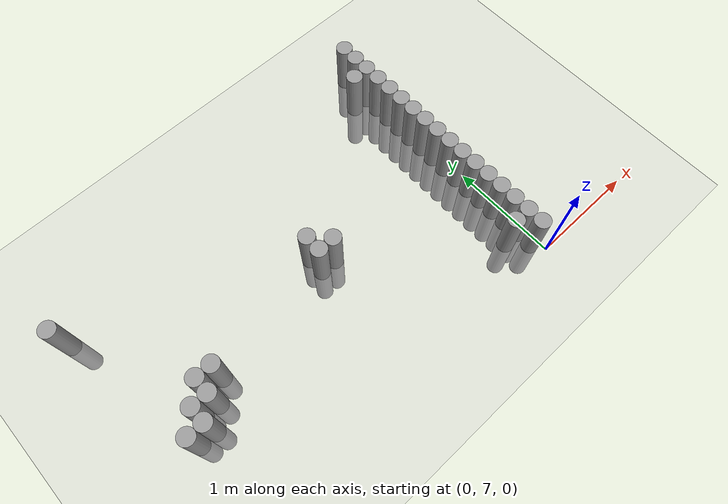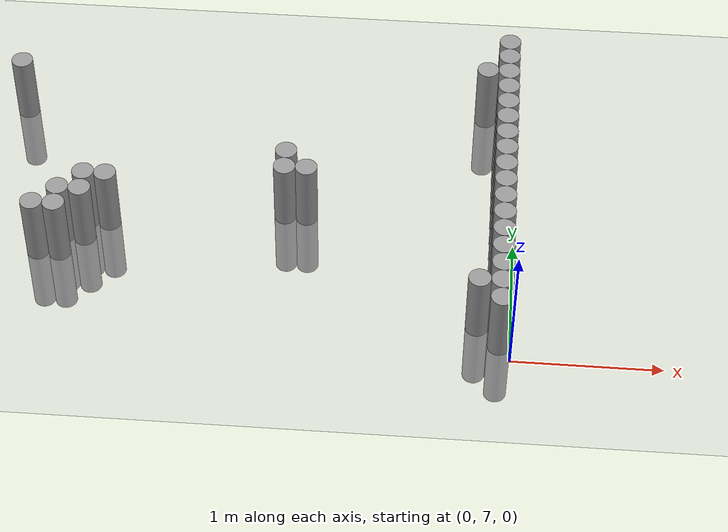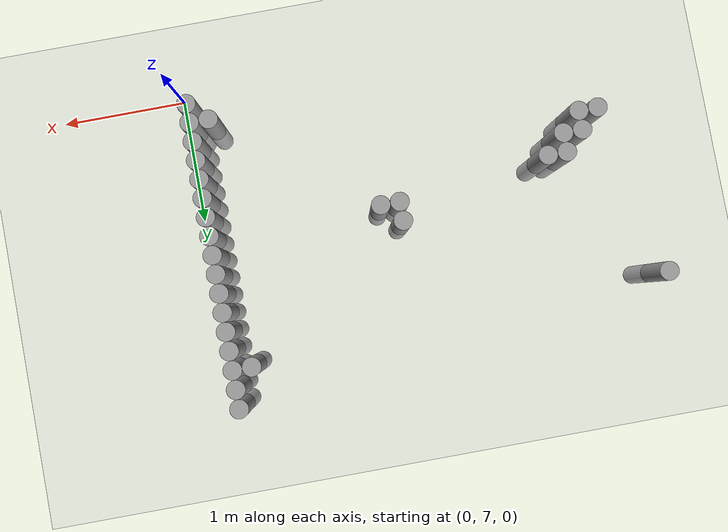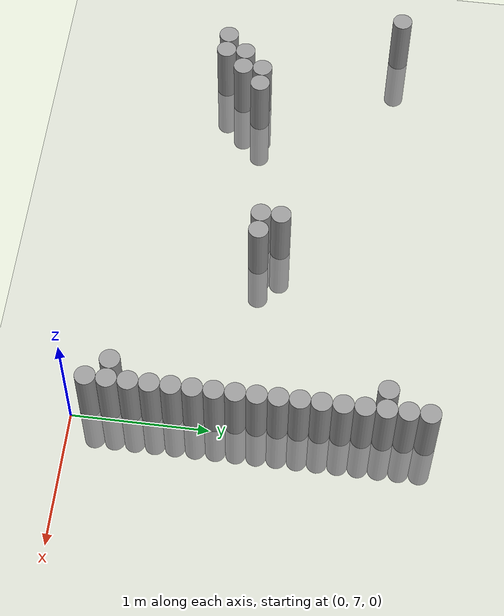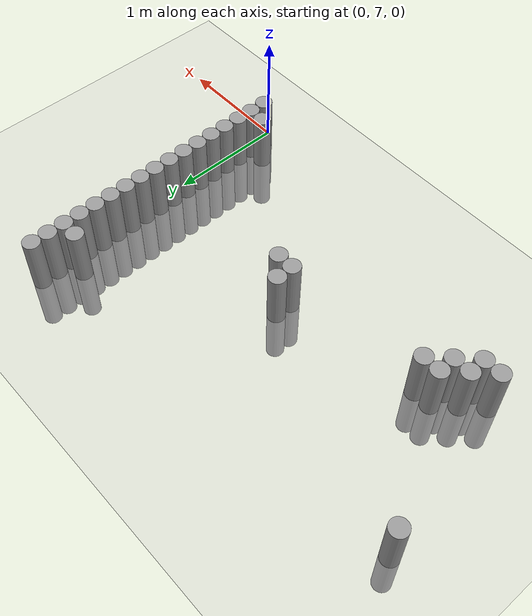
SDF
<sdf version="1.6">
 <world name="default">
  <model name="ground_plane">
   <static>1</static>
   <static>1</static>
   <link name="link">
    <collision name="collision">
     <geometry><plane><normal>0 0 1</normal><size>100 100</size></plane></geometry>
     <surface><friction><ode><mu>100</mu><mu2>50</mu2></ode></friction></surface>
    </collision>
    <visual name="visual">
     <cast_shadows>0</cast_shadows>
     <geometry><plane><normal>0 0 1</normal><size>100 100</size></plane></geometry>
     <material>
      <script><uri>file://media/materials/scripts/gazebo.material</uri><name>Gazebo/Grey</name></script>
     </material>
    </visual>
   </link>
  </model>
  <model name="unit_cylinder_156">
   <static>1</static>
   <pose>-3.525000 9.075000 0.000000 0.000000 0.000000 0.000000</pose>
   <link name="link">
    <inertial>
     <mass>1</mass>
     <inertia><ixx>0.145833</ixx><ixy>0</ixy><ixz>0</ixz><iyy>0.145833</iyy><iyz>0</iyz><izz>0.125</izz></inertia>
    </inertial>
    <collision name="collision">
     <geometry><cylinder><radius>0.075000</radius><length>1</length></cylinder></geometry>
    </collision>
    <visual name="visual">
     <geometry><cylinder><radius>0.075000</radius><length>1</length></cylinder></geometry>
     <material>
      <script><name>Gazebo/Grey</name><uri>file://media/materials/scripts/gazebo.material</uri></script>
     </material>
    </visual>
   </link>
  </model>
  <model name="unit_cylinder_157">
   <static>1</static>
   <pose>-3.225000 7.725000 0.000000 0.000000 0.000000 0.000000</pose>
   <link name="link">
    <inertial>
     <mass>1</mass>
     <inertia><ixx>0.145833</ixx><ixy>0</ixy><ixz>0</ixz><iyy>0.145833</iyy><iyz>0</iyz><izz>0.125</izz></inertia>
    </inertial>
    <collision name="collision">
     <geometry><cylinder><radius>0.075000</radius><length>1</length></cylinder></geometry>
    </collision>
    <visual name="visual">
     <geometry><cylinder><radius>0.075000</radius><length>1</length></cylinder></geometry>
     <material>
      <script><name>Gazebo/Grey</name><uri>file://media/materials/scripts/gazebo.material</uri></script>
     </material>
    </visual>
   </link>
  </model>
  <model name="unit_cylinder_160">
   <static>1</static>
   <pose>-3.075000 7.725000 0.000000 0.000000 0.000000 0.000000</pose>
   <link name="link">
    <inertial>
     <mass>1</mass>
     <inertia><ixx>0.145833</ixx><ixy>0</ixy><ixz>0</ixz><iyy>0.145833</iyy><iyz>0</iyz><izz>0.125</izz></inertia>
    </inertial>
    <collision name="collision">
     <geometry><cylinder><radius>0.075000</radius><length>1</length></cylinder></geometry>
    </collision>
    <visual name="visual">
     <geometry><cylinder><radius>0.075000</radius><length>1</length></cylinder></geometry>
     <material>
      <script><name>Gazebo/Grey</name><uri>file://media/materials/scripts/gazebo.material</uri></script>
     </material>
    </visual>
   </link>
  </model>
  <model name="unit_cylinder_161">
   <static>1</static>
   <pose>-3.075000 7.875000 0.000000 0.000000 0.000000 0.000000</pose>
   <link name="link">
    <inertial>
     <mass>1</mass>
     <inertia><ixx>0.145833</ixx><ixy>0</ixy><ixz>0</ixz><iyy>0.145833</iyy><iyz>0</iyz><izz>0.125</izz></inertia>
    </inertial>
    <collision name="collision">
     <geometry><cylinder><radius>0.075000</radius><length>1</length></cylinder></geometry>
    </collision>
    <visual name="visual">
     <geometry><cylinder><radius>0.075000</radius><length>1</length></cylinder></geometry>
     <material>
      <script><name>Gazebo/Grey</name><uri>file://media/materials/scripts/gazebo.material</uri></script>
     </material>
    </visual>
   </link>
  </model>
  <model name="unit_cylinder_163">
   <static>1</static>
   <pose>-2.925000 7.875000 0.000000 0.000000 0.000000 0.000000</pose>
   <link name="link">
    <inertial>
     <mass>1</mass>
     <inertia><ixx>0.145833</ixx><ixy>0</ixy><ixz>0</ixz><iyy>0.145833</iyy><iyz>0</iyz><izz>0.125</izz></inertia>
    </inertial>
    <collision name="collision">
     <geometry><cylinder><radius>0.075000</radius><length>1</length></cylinder></geometry>
    </collision>
    <visual name="visual">
     <geometry><cylinder><radius>0.075000</radius><length>1</length></cylinder></geometry>
     <material>
      <script><name>Gazebo/Grey</name><uri>file://media/materials/scripts/gazebo.material</uri></script>
     </material>
    </visual>
   </link>
  </model>
  <model name="unit_cylinder_164">
   <static>1</static>
   <pose>-2.925000 8.025000 0.000000 0.000000 0.000000 0.000000</pose>
   <link name="link">
    <inertial>
     <mass>1</mass>
     <inertia><ixx>0.145833</ixx><ixy>0</ixy><ixz>0</ixz><iyy>0.145833</iyy><iyz>0</iyz><izz>0.125</izz></inertia>
    </inertial>
    <collision name="collision">
     <geometry><cylinder><radius>0.075000</radius><length>1</length></cylinder></geometry>
    </collision>
    <visual name="visual">
     <geometry><cylinder><radius>0.075000</radius><length>1</length></cylinder></geometry>
     <material>
      <script><name>Gazebo/Grey</name><uri>file://media/materials/scripts/gazebo.material</uri></script>
     </material>
    </visual>
   </link>
  </model>
  <model name="unit_cylinder_165">
   <static>1</static>
   <pose>-2.775000 8.025000 0.000000 0.000000 0.000000 0.000000</pose>
   <link name="link">
    <inertial>
     <mass>1</mass>
     <inertia><ixx>0.145833</ixx><ixy>0</ixy><ixz>0</ixz><iyy>0.145833</iyy><iyz>0</iyz><izz>0.125</izz></inertia>
    </inertial>
    <collision name="collision">
     <geometry><cylinder><radius>0.075000</radius><length>1</length></cylinder></geometry>
    </collision>
    <visual name="visual">
     <geometry><cylinder><radius>0.075000</radius><length>1</length></cylinder></geometry>
     <material>
      <script><name>Gazebo/Grey</name><uri>file://media/materials/scripts/gazebo.material</uri></script>
     </material>
    </visual>
   </link>
  </model>
  <model name="unit_cylinder_177">
   <static>1</static>
   <pose>-1.575000 8.175000 0.000000 0.000000 0.000000 0.000000</pose>
   <link name="link">
    <inertial>
     <mass>1</mass>
     <inertia><ixx>0.145833</ixx><ixy>0</ixy><ixz>0</ixz><iyy>0.145833</iyy><iyz>0</iyz><izz>0.125</izz></inertia>
    </inertial>
    <collision name="collision">
     <geometry><cylinder><radius>0.075000</radius><length>1</length></cylinder></geometry>
    </collision>
    <visual name="visual">
     <geometry><cylinder><radius>0.075000</radius><length>1</length></cylinder></geometry>
     <material>
      <script><name>Gazebo/Grey</name><uri>file://media/materials/scripts/gazebo.material</uri></script>
     </material>
    </visual>
   </link>
  </model>
  <model name="unit_cylinder_178">
   <static>1</static>
   <pose>-1.575000 8.325000 0.000000 0.000000 0.000000 0.000000</pose>
   <link name="link">
    <inertial>
     <mass>1</mass>
     <inertia><ixx>0.145833</ixx><ixy>0</ixy><ixz>0</ixz><iyy>0.145833</iyy><iyz>0</iyz><izz>0.125</izz></inertia>
    </inertial>
    <collision name="collision">
     <geometry><cylinder><radius>0.075000</radius><length>1</length></cylinder></geometry>
    </collision>
    <visual name="visual">
     <geometry><cylinder><radius>0.075000</radius><length>1</length></cylinder></geometry>
     <material>
      <script><name>Gazebo/Grey</name><uri>file://media/materials/scripts/gazebo.material</uri></script>
     </material>
    </visual>
   </link>
  </model>
  <model name="unit_cylinder_180">
   <static>1</static>
   <pose>-1.425000 8.175000 0.000000 0.000000 0.000000 0.000000</pose>
   <link name="link">
    <inertial>
     <mass>1</mass>
     <inertia><ixx>0.145833</ixx><ixy>0</ixy><ixz>0</ixz><iyy>0.145833</iyy><iyz>0</iyz><izz>0.125</izz></inertia>
    </inertial>
    <collision name="collision">
     <geometry><cylinder><radius>0.075000</radius><length>1</length></cylinder></geometry>
    </collision>
    <visual name="visual">
     <geometry><cylinder><radius>0.075000</radius><length>1</length></cylinder></geometry>
     <material>
      <script><name>Gazebo/Grey</name><uri>file://media/materials/scripts/gazebo.material</uri></script>
     </material>
    </visual>
   </link>
  </model>
  <model name="unit_cylinder_194">
   <static>1</static>
   <pose>-0.225000 7.275000 0.000000 0.000000 0.000000 0.000000</pose>
   <link name="link">
    <inertial>
     <mass>1</mass>
     <inertia><ixx>0.145833</ixx><ixy>0</ixy><ixz>0</ixz><iyy>0.145833</iyy><iyz>0</iyz><izz>0.125</izz></inertia>
    </inertial>
    <collision name="collision">
     <geometry><cylinder><radius>0.075000</radius><length>1</length></cylinder></geometry>
    </collision>
    <visual name="visual">
     <geometry><cylinder><radius>0.075000</radius><length>1</length></cylinder></geometry>
     <material>
      <script><name>Gazebo/Grey</name><uri>file://media/materials/scripts/gazebo.material</uri></script>
     </material>
    </visual>
   </link>
  </model>
  <model name="unit_cylinder_195">
   <static>1</static>
   <pose>-0.225000 9.225000 0.000000 0.000000 0.000000 0.000000</pose>
   <link name="link">
    <inertial>
     <mass>1</mass>
     <inertia><ixx>0.145833</ixx><ixy>0</ixy><ixz>0</ixz><iyy>0.145833</iyy><iyz>0</iyz><izz>0.125</izz></inertia>
    </inertial>
    <collision name="collision">
     <geometry><cylinder><radius>0.075000</radius><length>1</length></cylinder></geometry>
    </collision>
    <visual name="visual">
     <geometry><cylinder><radius>0.075000</radius><length>1</length></cylinder></geometry>
     <material>
      <script><name>Gazebo/Grey</name><uri>file://media/materials/scripts/gazebo.material</uri></script>
     </material>
    </visual>
   </link>
  </model>
  <model name="unit_cylinder_209">
   <static>1</static>
   <pose>-0.075000 7.125000 0.000000 0.000000 0.000000 0.000000</pose>
   <link name="link">
    <inertial>
     <mass>1</mass>
     <inertia><ixx>0.145833</ixx><ixy>0</ixy><ixz>0</ixz><iyy>0.145833</iyy><iyz>0</iyz><izz>0.125</izz></inertia>
    </inertial>
    <collision name="collision">
     <geometry><cylinder><radius>0.075000</radius><length>1</length></cylinder></geometry>
    </collision>
    <visual name="visual">
     <geometry><cylinder><radius>0.075000</radius><length>1</length></cylinder></geometry>
     <material>
      <script><name>Gazebo/Grey</name><uri>file://media/materials/scripts/gazebo.material</uri></script>
     </material>
    </visual>
   </link>
  </model>
  <model name="unit_cylinder_210">
   <static>1</static>
   <pose>-0.075000 7.275000 0.000000 0.000000 0.000000 0.000000</pose>
   <link name="link">
    <inertial>
     <mass>1</mass>
     <inertia><ixx>0.145833</ixx><ixy>0</ixy><ixz>0</ixz><iyy>0.145833</iyy><iyz>0</iyz><izz>0.125</izz></inertia>
    </inertial>
    <collision name="collision">
     <geometry><cylinder><radius>0.075000</radius><length>1</length></cylinder></geometry>
    </collision>
    <visual name="visual">
     <geometry><cylinder><radius>0.075000</radius><length>1</length></cylinder></geometry>
     <material>
      <script><name>Gazebo/Grey</name><uri>file://media/materials/scripts/gazebo.material</uri></script>
     </material>
    </visual>
   </link>
  </model>
  <model name="unit_cylinder_211">
   <static>1</static>
   <pose>-0.075000 7.425000 0.000000 0.000000 0.000000 0.000000</pose>
   <link name="link">
    <inertial>
     <mass>1</mass>
     <inertia><ixx>0.145833</ixx><ixy>0</ixy><ixz>0</ixz><iyy>0.145833</iyy><iyz>0</iyz><izz>0.125</izz></inertia>
    </inertial>
    <collision name="collision">
     <geometry><cylinder><radius>0.075000</radius><length>1</length></cylinder></geometry>
    </collision>
    <visual name="visual">
     <geometry><cylinder><radius>0.075000</radius><length>1</length></cylinder></geometry>
     <material>
      <script><name>Gazebo/Grey</name><uri>file://media/materials/scripts/gazebo.material</uri></script>
     </material>
    </visual>
   </link>
  </model>
  <model name="unit_cylinder_212">
   <static>1</static>
   <pose>-0.075000 7.575000 0.000000 0.000000 0.000000 0.000000</pose>
   <link name="link">
    <inertial>
     <mass>1</mass>
     <inertia><ixx>0.145833</ixx><ixy>0</ixy><ixz>0</ixz><iyy>0.145833</iyy><iyz>0</iyz><izz>0.125</izz></inertia>
    </inertial>
    <collision name="collision">
     <geometry><cylinder><radius>0.075000</radius><length>1</length></cylinder></geometry>
    </collision>
    <visual name="visual">
     <geometry><cylinder><radius>0.075000</radius><length>1</length></cylinder></geometry>
     <material>
      <script><name>Gazebo/Grey</name><uri>file://media/materials/scripts/gazebo.material</uri></script>
     </material>
    </visual>
   </link>
  </model>
  <model name="unit_cylinder_213">
   <static>1</static>
   <pose>-0.075000 7.725000 0.000000 0.000000 0.000000 0.000000</pose>
   <link name="link">
    <inertial>
     <mass>1</mass>
     <inertia><ixx>0.145833</ixx><ixy>0</ixy><ixz>0</ixz><iyy>0.145833</iyy><iyz>0</iyz><izz>0.125</izz></inertia>
    </inertial>
    <collision name="collision">
     <geometry><cylinder><radius>0.075000</radius><length>1</length></cylinder></geometry>
    </collision>
    <visual name="visual">
     <geometry><cylinder><radius>0.075000</radius><length>1</length></cylinder></geometry>
     <material>
      <script><name>Gazebo/Grey</name><uri>file://media/materials/scripts/gazebo.material</uri></script>
     </material>
    </visual>
   </link>
  </model>
  <model name="unit_cylinder_214">
   <static>1</static>
   <pose>-0.075000 7.875000 0.000000 0.000000 0.000000 0.000000</pose>
   <link name="link">
    <inertial>
     <mass>1</mass>
     <inertia><ixx>0.145833</ixx><ixy>0</ixy><ixz>0</ixz><iyy>0.145833</iyy><iyz>0</iyz><izz>0.125</izz></inertia>
    </inertial>
    <collision name="collision">
     <geometry><cylinder><radius>0.075000</radius><length>1</length></cylinder></geometry>
    </collision>
    <visual name="visual">
     <geometry><cylinder><radius>0.075000</radius><length>1</length></cylinder></geometry>
     <material>
      <script><name>Gazebo/Grey</name><uri>file://media/materials/scripts/gazebo.material</uri></script>
     </material>
    </visual>
   </link>
  </model>
  <model name="unit_cylinder_215">
   <static>1</static>
   <pose>-0.075000 8.025000 0.000000 0.000000 0.000000 0.000000</pose>
   <link name="link">
    <inertial>
     <mass>1</mass>
     <inertia><ixx>0.145833</ixx><ixy>0</ixy><ixz>0</ixz><iyy>0.145833</iyy><iyz>0</iyz><izz>0.125</izz></inertia>
    </inertial>
    <collision name="collision">
     <geometry><cylinder><radius>0.075000</radius><length>1</length></cylinder></geometry>
    </collision>
    <visual name="visual">
     <geometry><cylinder><radius>0.075000</radius><length>1</length></cylinder></geometry>
     <material>
      <script><name>Gazebo/Grey</name><uri>file://media/materials/scripts/gazebo.material</uri></script>
     </material>
    </visual>
   </link>
  </model>
  <model name="unit_cylinder_216">
   <static>1</static>
   <pose>-0.075000 8.175000 0.000000 0.000000 0.000000 0.000000</pose>
   <link name="link">
    <inertial>
     <mass>1</mass>
     <inertia><ixx>0.145833</ixx><ixy>0</ixy><ixz>0</ixz><iyy>0.145833</iyy><iyz>0</iyz><izz>0.125</izz></inertia>
    </inertial>
    <collision name="collision">
     <geometry><cylinder><radius>0.075000</radius><length>1</length></cylinder></geometry>
    </collision>
    <visual name="visual">
     <geometry><cylinder><radius>0.075000</radius><length>1</length></cylinder></geometry>
     <material>
      <script><name>Gazebo/Grey</name><uri>file://media/materials/scripts/gazebo.material</uri></script>
     </material>
    </visual>
   </link>
  </model>
  <model name="unit_cylinder_217">
   <static>1</static>
   <pose>-0.075000 8.325000 0.000000 0.000000 0.000000 0.000000</pose>
   <link name="link">
    <inertial>
     <mass>1</mass>
     <inertia><ixx>0.145833</ixx><ixy>0</ixy><ixz>0</ixz><iyy>0.145833</iyy><iyz>0</iyz><izz>0.125</izz></inertia>
    </inertial>
    <collision name="collision">
     <geometry><cylinder><radius>0.075000</radius><length>1</length></cylinder></geometry>
    </collision>
    <visual name="visual">
     <geometry><cylinder><radius>0.075000</radius><length>1</length></cylinder></geometry>
     <material>
      <script><name>Gazebo/Grey</name><uri>file://media/materials/scripts/gazebo.material</uri></script>
     </material>
    </visual>
   </link>
  </model>
  <model name="unit_cylinder_218">
   <static>1</static>
   <pose>-0.075000 8.475000 0.000000 0.000000 0.000000 0.000000</pose>
   <link name="link">
    <inertial>
     <mass>1</mass>
     <inertia><ixx>0.145833</ixx><ixy>0</ixy><ixz>0</ixz><iyy>0.145833</iyy><iyz>0</iyz><izz>0.125</izz></inertia>
    </inertial>
    <collision name="collision">
     <geometry><cylinder><radius>0.075000</radius><length>1</length></cylinder></geometry>
    </collision>
    <visual name="visual">
     <geometry><cylinder><radius>0.075000</radius><length>1</length></cylinder></geometry>
     <material>
      <script><name>Gazebo/Grey</name><uri>file://media/materials/scripts/gazebo.material</uri></script>
     </material>
    </visual>
   </link>
  </model>
  <model name="unit_cylinder_219">
   <static>1</static>
   <pose>-0.075000 8.625000 0.000000 0.000000 0.000000 0.000000</pose>
   <link name="link">
    <inertial>
     <mass>1</mass>
     <inertia><ixx>0.145833</ixx><ixy>0</ixy><ixz>0</ixz><iyy>0.145833</iyy><iyz>0</iyz><izz>0.125</izz></inertia>
    </inertial>
    <collision name="collision">
     <geometry><cylinder><radius>0.075000</radius><length>1</length></cylinder></geometry>
    </collision>
    <visual name="visual">
     <geometry><cylinder><radius>0.075000</radius><length>1</length></cylinder></geometry>
     <material>
      <script><name>Gazebo/Grey</name><uri>file://media/materials/scripts/gazebo.material</uri></script>
     </material>
    </visual>
   </link>
  </model>
  <model name="unit_cylinder_220">
   <static>1</static>
   <pose>-0.075000 8.775000 0.000000 0.000000 0.000000 0.000000</pose>
   <link name="link">
    <inertial>
     <mass>1</mass>
     <inertia><ixx>0.145833</ixx><ixy>0</ixy><ixz>0</ixz><iyy>0.145833</iyy><iyz>0</iyz><izz>0.125</izz></inertia>
    </inertial>
    <collision name="collision">
     <geometry><cylinder><radius>0.075000</radius><length>1</length></cylinder></geometry>
    </collision>
    <visual name="visual">
     <geometry><cylinder><radius>0.075000</radius><length>1</length></cylinder></geometry>
     <material>
      <script><name>Gazebo/Grey</name><uri>file://media/materials/scripts/gazebo.material</uri></script>
     </material>
    </visual>
   </link>
  </model>
  <model name="unit_cylinder_221">
   <static>1</static>
   <pose>-0.075000 8.925000 0.000000 0.000000 0.000000 0.000000</pose>
   <link name="link">
    <inertial>
     <mass>1</mass>
     <inertia><ixx>0.145833</ixx><ixy>0</ixy><ixz>0</ixz><iyy>0.145833</iyy><iyz>0</iyz><izz>0.125</izz></inertia>
    </inertial>
    <collision name="collision">
     <geometry><cylinder><radius>0.075000</radius><length>1</length></cylinder></geometry>
    </collision>
    <visual name="visual">
     <geometry><cylinder><radius>0.075000</radius><length>1</length></cylinder></geometry>
     <material>
      <script><name>Gazebo/Grey</name><uri>file://media/materials/scripts/gazebo.material</uri></script>
     </material>
    </visual>
   </link>
  </model>
  <model name="unit_cylinder_222">
   <static>1</static>
   <pose>-0.075000 9.075000 0.000000 0.000000 0.000000 0.000000</pose>
   <link name="link">
    <inertial>
     <mass>1</mass>
     <inertia><ixx>0.145833</ixx><ixy>0</ixy><ixz>0</ixz><iyy>0.145833</iyy><iyz>0</iyz><izz>0.125</izz></inertia>
    </inertial>
    <collision name="collision">
     <geometry><cylinder><radius>0.075000</radius><length>1</length></cylinder></geometry>
    </collision>
    <visual name="visual">
     <geometry><cylinder><radius>0.075000</radius><length>1</length></cylinder></geometry>
     <material>
      <script><name>Gazebo/Grey</name><uri>file://media/materials/scripts/gazebo.material</uri></script>
     </material>
    </visual>
   </link>
  </model>
  <model name="unit_cylinder_223">
   <static>1</static>
   <pose>-0.075000 9.225000 0.000000 0.000000 0.000000 0.000000</pose>
   <link name="link">
    <inertial>
     <mass>1</mass>
     <inertia><ixx>0.145833</ixx><ixy>0</ixy><ixz>0</ixz><iyy>0.145833</iyy><iyz>0</iyz><izz>0.125</izz></inertia>
    </inertial>
    <collision name="collision">
     <geometry><cylinder><radius>0.075000</radius><length>1</length></cylinder></geometry>
    </collision>
    <visual name="visual">
     <geometry><cylinder><radius>0.075000</radius><length>1</length></cylinder></geometry>
     <material>
      <script><name>Gazebo/Grey</name><uri>file://media/materials/scripts/gazebo.material</uri></script>
     </material>
    </visual>
   </link>
  </model>
  <model name="unit_cylinder_224">
   <static>1</static>
   <pose>-0.075000 9.375000 0.000000 0.000000 0.000000 0.000000</pose>
   <link name="link">
    <inertial>
     <mass>1</mass>
     <inertia><ixx>0.145833</ixx><ixy>0</ixy><ixz>0</ixz><iyy>0.145833</iyy><iyz>0</iyz><izz>0.125</izz></inertia>
    </inertial>
    <collision name="collision">
     <geometry><cylinder><radius>0.075000</radius><length>1</length></cylinder></geometry>
    </collision>
    <visual name="visual">
     <geometry><cylinder><radius>0.075000</radius><length>1</length></cylinder></geometry>
     <material>
      <script><name>Gazebo/Grey</name><uri>file://media/materials/scripts/gazebo.material</uri></script>
     </material>
    </visual>
   </link>
  </model>
  <model name="unit_cylinder_225">
   <static>1</static>
   <pose>-0.075000 9.525000 0.000000 0.000000 0.000000 0.000000</pose>
   <link name="link">
    <inertial>
     <mass>1</mass>
     <inertia><ixx>0.145833</ixx><ixy>0</ixy><ixz>0</ixz><iyy>0.145833</iyy><iyz>0</iyz><izz>0.125</izz></inertia>
    </inertial>
    <collision name="collision">
     <geometry><cylinder><radius>0.075000</radius><length>1</length></cylinder></geometry>
    </collision>
    <visual name="visual">
     <geometry><cylinder><radius>0.075000</radius><length>1</length></cylinder></geometry>
     <material>
      <script><name>Gazebo/Grey</name><uri>file://media/materials/scripts/gazebo.material</uri></script>
     </material>
    </visual>
   </link>
  </model>
 </world>
</sdf>
